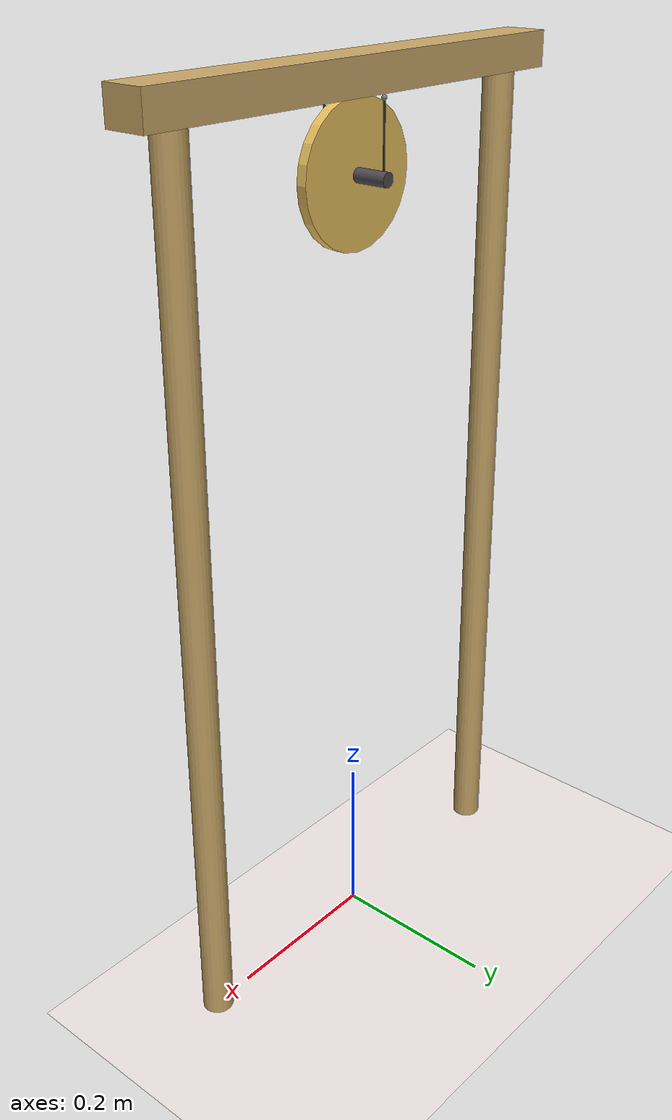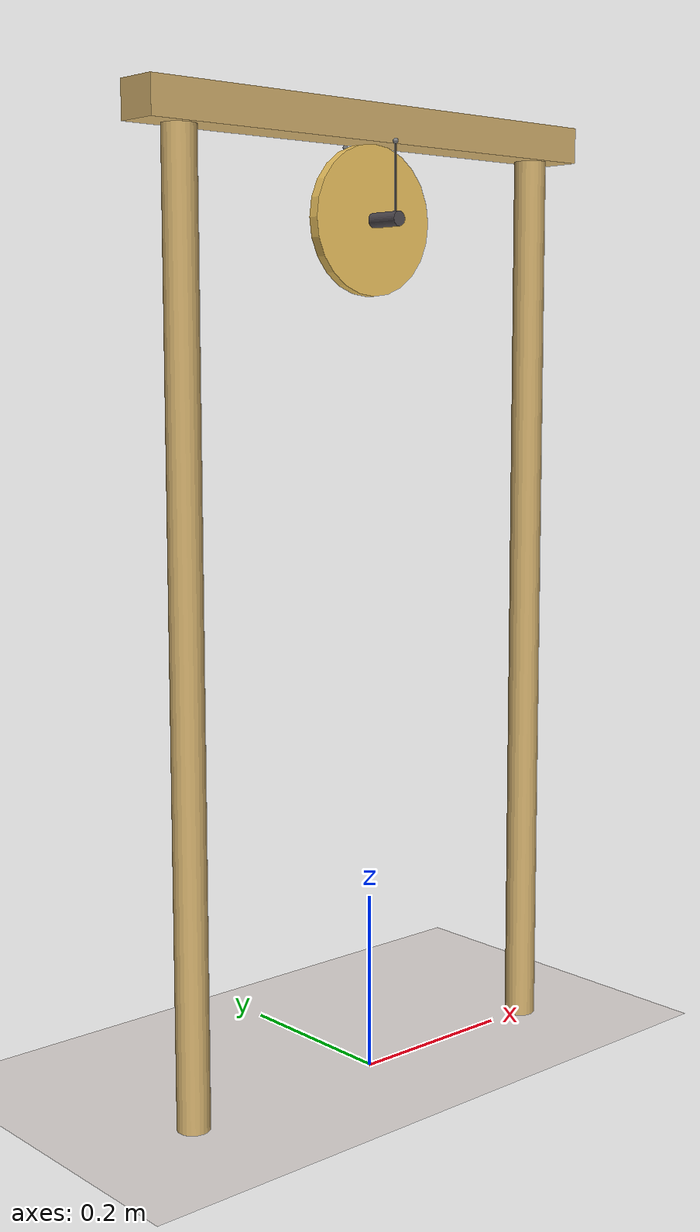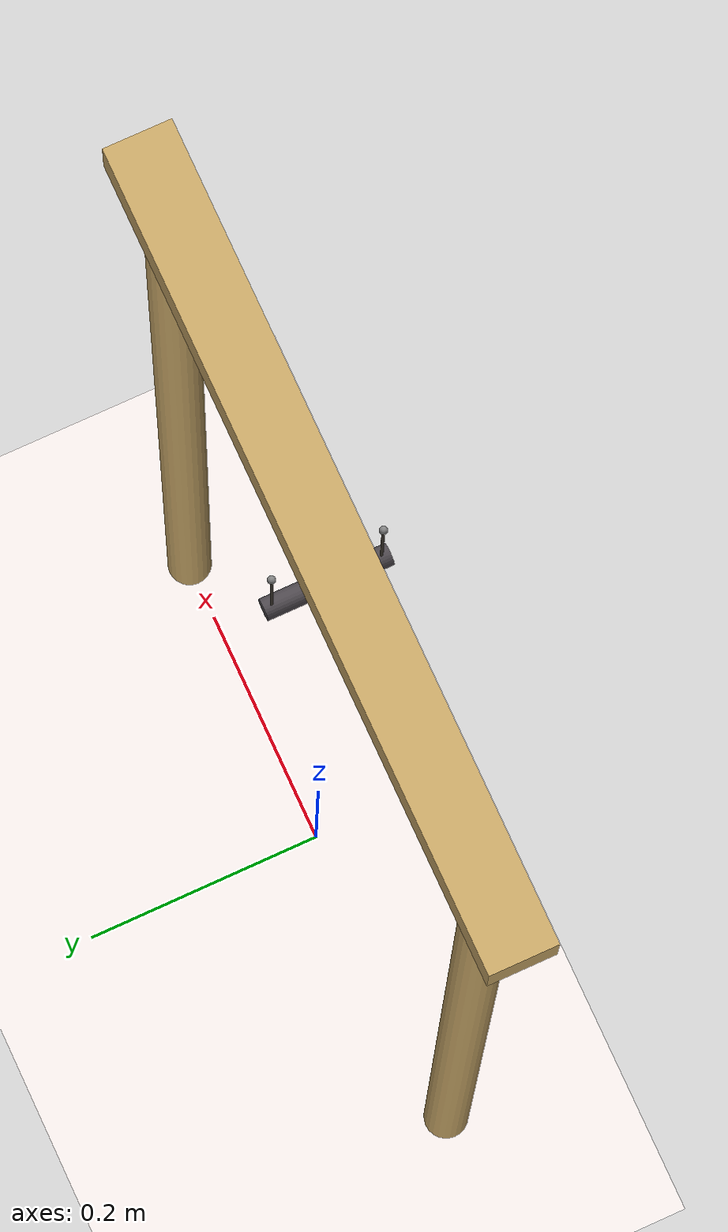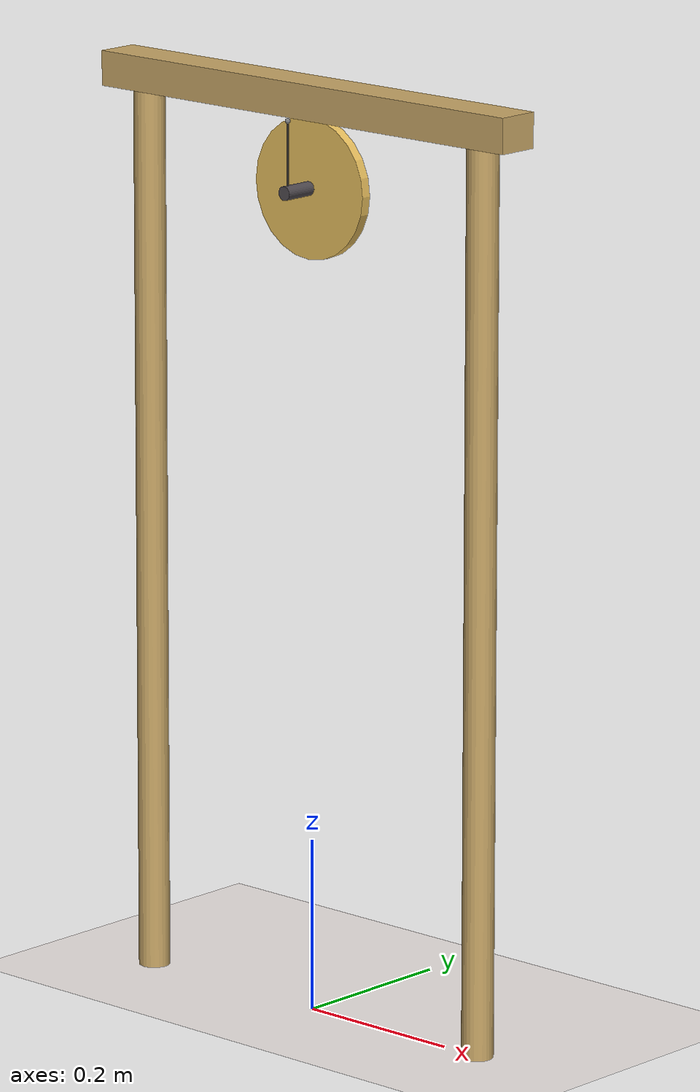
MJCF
<mujoco model="maxwell_wheel">
  <compiler angle="radian" coordinate="local" autolimits="true"/>
  <option timestep="0.001" gravity="0 0 -9.81" integrator="implicitfast"/>

  <visual>
    <headlight diffuse="0 0 0" ambient="0.50 0.48 0.55" specular="0 0 0"/>
    <rgba haze="0.94 0.91 0.90 1"/>
    <global azimuth="120" elevation="-15" offwidth="1920" offheight="1080" fovy="38"/>
    <quality shadowsize="8192" offsamples="8"/>
    <map shadowclip="6" shadowscale="0.7"/>
  </visual>

  <asset>
    <texture type="skybox" builtin="flat"
             rgb1="0.74 0.68 0.86" rgb2="0.74 0.68 0.86"
             width="512" height="512" mark="none" markrgb="0 0 0"/>

    <material name="floor_mat" rgba="0.94 0.91 0.90 1" specular="0" shininess="0"/>
    <material name="wood"      rgba="0.93 0.82 0.58 1" specular="0.1" shininess="0.1"/>
    <material name="wood_dark" rgba="0.78 0.65 0.40 1" specular="0.1" shininess="0.1"/>
    <material name="brass"     rgba="0.90 0.74 0.36 1" specular="0.7" shininess="0.85"/>
    <material name="axle_mat"  rgba="0.30 0.28 0.30 1" specular="0.5" shininess="0.6"/>
    <material name="string_mat" rgba="0.30 0.27 0.24 1" specular="0" shininess="0"/>
  </asset>

  <worldbody>
    <light pos="0 0 12" dir="-0.30 0.55 -1" directional="true" castshadow="true"
           diffuse="0.85 0.82 0.78" specular="0.15 0.15 0.15"/>
    <light pos="0 0 8" dir="0.40 -0.30 -1" directional="true" castshadow="false"
           diffuse="0.28 0.28 0.34" specular="0 0 0"/>

    <geom name="floor" type="plane" size="40 40 0.1" material="floor_mat"/>

    <!-- Stand: two posts + crossbar at z=1.05 -->
    <geom type="cylinder" fromto="-0.25 0 0  -0.25 0 1.05" size="0.018" material="wood_dark"/>
    <geom type="cylinder" fromto=" 0.25 0 0   0.25 0 1.05" size="0.018" material="wood_dark"/>
    <geom type="box"      pos="0 0 1.05" size="0.30 0.025 0.020" material="wood_dark"/>

    <!-- Crossbar attachment sites for the two strings -->
    <site name="cross_L" pos="0 -0.04 1.030" size="0.003"/>
    <site name="cross_R" pos="0  0.04 1.030" size="0.003"/>

    <body name="wheel" pos="0 0 0.95">
      <joint name="slider" type="slide" axis="0 0 1"
             damping="0.001" range="-0.75 0.05"/>
      <joint name="axle"   type="hinge" axis="0 1 0"
             damping="0.0005"/>

      <!-- Heavy disc (the wheel itself) -->
      <geom name="disc" type="cylinder"
            fromto="0 -0.006 0  0 0.006 0" size="0.080"
            material="brass" mass="0.50"/>

      <!-- Thin axle sticking out either side (massless: inertia is in the disc) -->
      <geom name="axle_L" type="cylinder"
            fromto="0 -0.046 0  0 -0.006 0" size="0.008"
            material="axle_mat" mass="0"/>
      <geom name="axle_R" type="cylinder"
            fromto="0  0.006 0  0  0.046 0" size="0.008"
            material="axle_mat" mass="0"/>

      <!-- Sites where the strings attach to the axle ends -->
      <site name="axle_L_site" pos="0 -0.040 0" size="0.003"/>
      <site name="axle_R_site" pos="0  0.040 0" size="0.003"/>
    </body>

    <!-- 3/4 view from front-right, framing the full descent (z 0.20 to 1.00) -->
    <camera name="cam" pos="1.20 -0.85 0.65" fovy="38"
            xyaxes="0.578 0.816 0   -0.024 0.017 1.000"/>
  </worldbody>

  <!-- Visual strings: two thin spatial tendons from crossbar down to axle ends.
       These are decoration only; the physics is enforced by the equality. -->
  <tendon>
    <spatial name="string_L" width="0.0012" rgba="0.20 0.18 0.15 1" limited="false">
      <site site="cross_L"/>
      <site site="axle_L_site"/>
    </spatial>
    <spatial name="string_R" width="0.0012" rgba="0.20 0.18 0.15 1" limited="false">
      <site site="cross_R"/>
      <site site="axle_R_site"/>
    </spatial>
  </tendon>

  <equality>
    <joint joint1="slider" joint2="axle" polycoef="0 0.008 0 0 0"/>
  </equality>
</mujoco>
